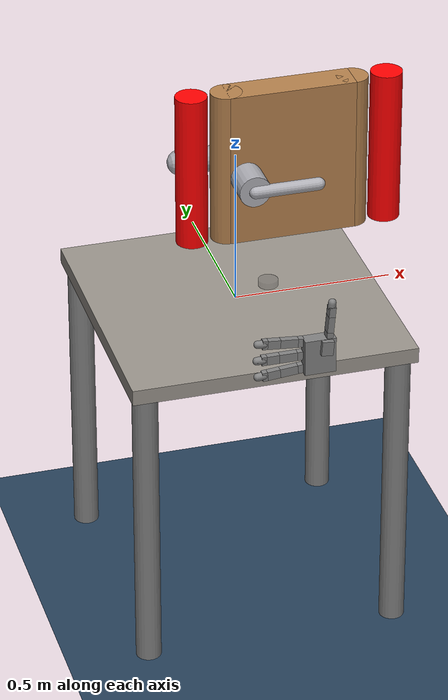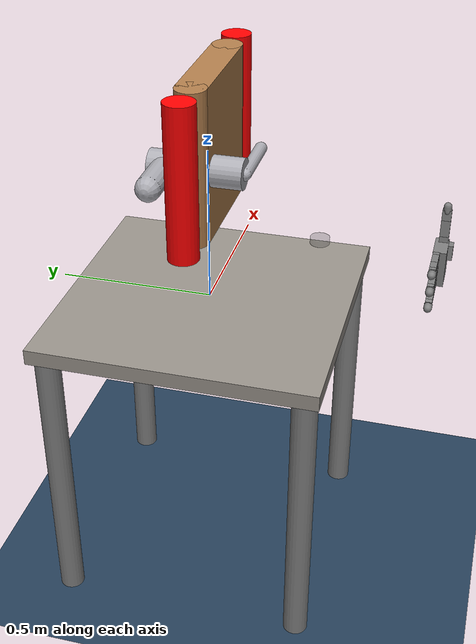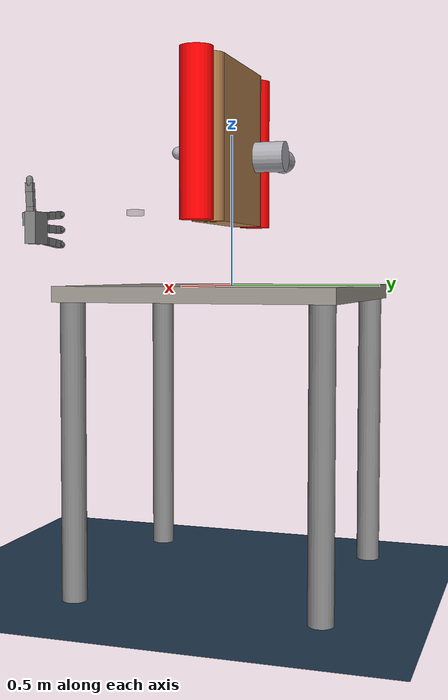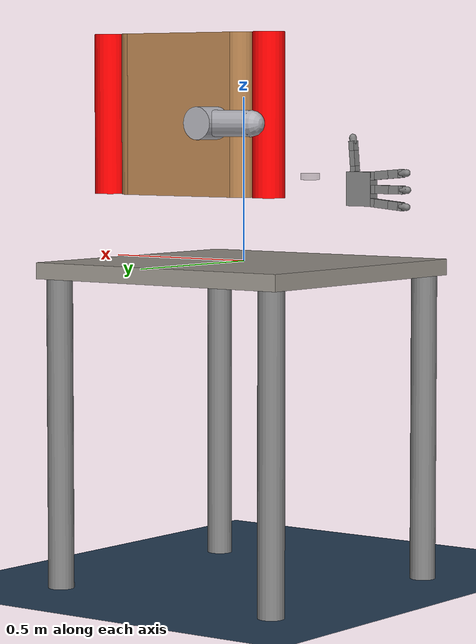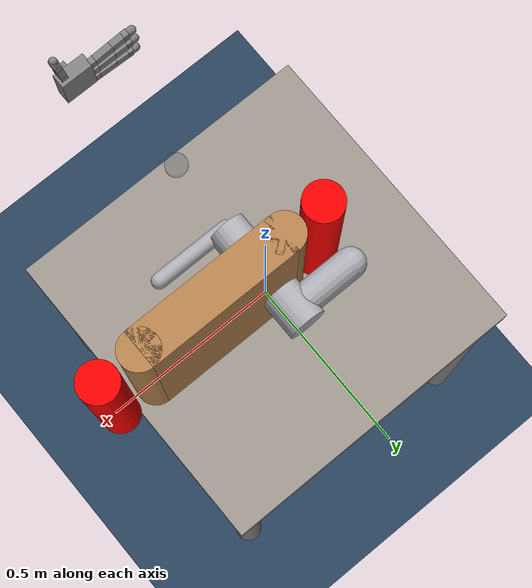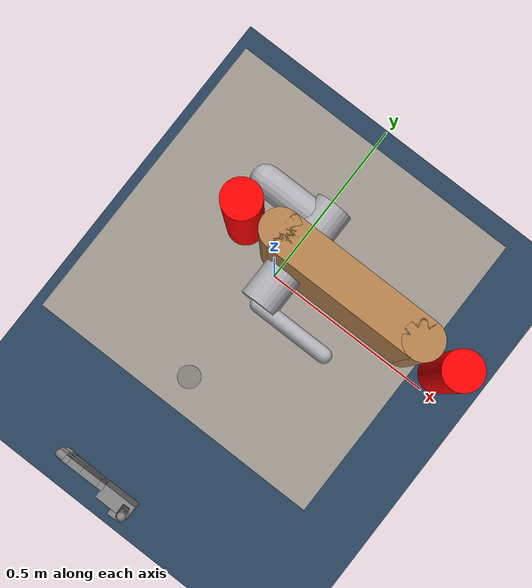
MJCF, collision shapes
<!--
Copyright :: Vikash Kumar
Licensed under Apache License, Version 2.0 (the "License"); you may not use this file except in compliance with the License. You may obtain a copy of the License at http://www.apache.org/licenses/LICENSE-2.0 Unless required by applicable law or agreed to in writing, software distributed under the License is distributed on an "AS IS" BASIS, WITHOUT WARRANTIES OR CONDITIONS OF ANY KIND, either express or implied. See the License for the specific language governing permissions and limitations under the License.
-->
<!-- TODO: change the name  -->

<mujoco model='Allegro-door(v1.0)'>

    <!-- ======= WORLD ======= -->
    <worldbody>
        <light directional='false' diffuse='.7 .7 .7' specular='0.03 0.03 0.03' pos='-1 -1.0 4.0' dir='1 1.0 -4'/>
        <geom name='ground' size="1.5 1.5 0.25" pos="0 0 -1" type="plane" contype="1" conaffinity="0" material="groundplane" />
        <camera name="fixed" pos="0 -0.7 0.7" quat="0.92388 0.382683 0 0" />
        <!-- Camera for the VIL paper -->
        <camera name="vil_camera" pos="0 -1.2 1.2" quat="0.92388 0.382683 0 0" />

        <!-- ======= TABLE ======= -->
        <body name="table">
            <!-- Plane has better contacts -->
            <geom size="0.45 0.45 0.025" pos="0 0 -0.025" type="box" material="tablecube" />
            <geom size="0.04 0.5" pos="0.4 0.4 -0.501" quat="0 1 0 0" type="cylinder" contype="0" conaffinity="0" />
            <geom size="0.04 0.5" pos="-0.4 0.4 -0.501" quat="0 1 0 0" type="cylinder" contype="0" conaffinity="0" />
            <geom size="0.04 0.5" pos="0.4 -0.4 -0.501" quat="0 1 0 0" type="cylinder" contype="0" conaffinity="0" />
            <geom size="0.04 0.5" pos="-0.4 -0.4 -0.501" quat="0 1 0 0" type="cylinder" contype="0" conaffinity="0" />
        </body>

        <!-- ======= MOCAP ======= -->
        <body name="vive_tracker" pos="0 -0.35 0.25" mocap="true">
            <inertial pos="0 0 0" mass="0.064" diaginertia="1.70667e-05 1.70667e-05 1.70667e-05" />
            <geom size="0.03 0.01" type="cylinder" contype="0" conaffinity="0" group="3" rgba="0.3 0.3 0.3 0.3" />
        </body>

        <!-- ======= HAND ======= -->
        <body name="forearm" pos="0 -0.7 0.2" euler="-1.57 0 3.14">
            <inertial pos="0.001 -0.002 0.29" quat="0.982037 -0.0160006 0 -0.188007" mass="4" diaginertia="0.01 0.01 0.0075" />
            <joint name="ARTz" pos="0 0 0" axis="0 0 1" type="slide" range="-0.3 0.5" damping="20" />
            <joint name="ARRx" pos="0 0 0" axis="1 0 0" range="-0.75 0.75" damping="20" />
            <joint name="ARRy" pos="0 0 0" axis="0 1 0" range="-0.75 0.75" damping="20" />
            <joint name="ARRz" pos="0 0 0" axis="0 0 1" range="-1 2" damping="20" />

            <!-- ======= Adroit ======= -->
            <include file="wonik_allegro/left_hand.xml"/>
        </body>

        <!-- ======= DOOR ======= -->
        <body name="frame" pos="-0.107339 0.0435293 0.447376" user="1001 0 2002 -0.4 -0.1 0.252 0 0.3 0.45">
            <inertial pos="0.29 0 0" quat="0.5 0.5 0.5 0.5" mass="7.85398" diaginertia="0.923301 0.764585 0.168533" />
            <geom size="0.05 0.25" pos="0.6 0 0" type="cylinder" material="MatWood" rgba="1 0 0 1" />
            <geom size="0.05 0.25" pos="-0.02 0 0" type="cylinder" material="MatWood" rgba="1 0 0 1" />
            <site name="S_handle_target" pos="0.75 -0.5 -.18" size="0.025" group='3'/>
            <body name="door" pos="0.29 0 0">
                <inertial pos="0.0296816 -0.00152345 0" quat="0.701072 0 0 0.713091" mass="2.43455" diaginertia="0.0913751 0.0521615 0.043714" />
                <joint name="door_hinge" pos="0.31 0 0" axis="0 0 1" range="0 1.57" damping="1" frictionloss="2" />
                <geom size="0.2 0.05 0.25" type="box" friction="1 1 1" material="MatWood" />
                <geom size="0.05 0.25" pos="0.2 0 0" type="cylinder" material="MatWood" />
                <geom size="0.05 0.25" pos="-0.2 0 0" type="cylinder" material="MatWood" />
                <body name="latch" pos="-0.15 0 -0.025">
                    <inertial pos="-0.017762 0.0138544 0" quat="0.365653 0.605347 -0.36522 0.605365" mass="3.53743" diaginertia="0.0483771 0.0410001 0.0111013" />
                    <joint name="latch" pos="0 0 0" axis="0 1 0" range="0 1.8" frictionloss="5" />
                    <geom size="0.05 0.15" quat="0.707388 0.706825 0 0" type="cylinder" material="MatFoil" />
                    <geom size="0.02 0.1" pos="0.1 -0.15 0" quat="0.707388 0 0.706825 0" type="capsule" material="MatFoil" />
                    <geom size="0.04 0.07" pos="-0.1 0.1 0" quat="0.707388 0 0.706825 0" type="capsule" material="MatFoil" />
                    <site name="S_handle" pos="0.15 -0.15 0" size="0.025" group='3'/>
                </body>
            </body>
        </body>

    </worldbody>

    <actuator>
        <general name="A_ARTz" joint="ARTz" ctrlrange="-0.3 0.5" biastype="affine" gainprm="500 0 0" biasprm="0 -200 0" />
        <general name="A_ARRx" joint="ARRx" ctrlrange="-.75 .75" biastype="affine" gainprm="500 0 0" biasprm="0 -200 0" />
        <general name="A_ARRy" joint="ARRy" ctrlrange="-.75 .75" biastype="affine" gainprm="500 0 0" biasprm="0 -200 0" />
        <general name="A_ARRz" joint="ARRz" ctrlrange="-1.0 2.0" biastype="affine" gainprm="500 0 0" biasprm="0 -200 0" />
    </actuator>
    <include file='Allegro_assets.xml'/>
    <!-- #TODO: check here  -->

</mujoco>

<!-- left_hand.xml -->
<mujocoinclude>

  <body name="palm" quat="0 1 0 1" childclass="allegro_left">
    <geom quat="1 -1 0 0" class="palm_visual" mesh="base_link_left"/>
    <geom class="palm_collision"/>
    <site name="S_grasp" type="sphere" rgba="0 0 0 0" size="0.01" pos=".007 -.05 0.07" quat="0.0087 -0.6 -0.0034 -0.81" />
    <!-- TODO: check S_grasp i.e. palm position -->
    <!-- Ring finger -->
    <body name="rf_base" pos="0 0.0435 -0.001542" quat="0.999048 -0.0436194 0 0">
      <joint name="rfj0" class="base"/>
      <geom class="base_visual"/>
      <geom class="base_collision"/>
      <body name="rf_proximal" pos="0 0 0.0164">
        <joint name="rfj1" class="proximal"/>
        <geom class="proximal_visual"/>
        <geom class="proximal_collision"/>
        <body name="rf_medial" pos="0 0 0.054">
          <joint name="rfj2" class="medial"/>
          <geom class="medial_visual"/>
          <geom class="medial_collision"/>
          <body name="rf_distal" pos="0 0 0.0384">
            <joint name="rfj3" class="distal"/>
            <geom class="distal_visual"/>
            <geom class="distal_collision"/>
            <body name="rf_tip">
              <geom class="fingertip_visual"/>
              <geom class="fingertip_collision"/>
            </body>
          </body>
        </body>
      </body>
    </body>
    <!-- Middle finger -->
    <body name="mf_base" pos="0 0 0.0007">
      <joint name="mfj0" class="base"/>
      <geom class="base_visual"/>
      <geom class="base_collision"/>
      <body name="mf_proximal" pos="0 0 0.0164">
        <joint name="mfj1" class="proximal"/>
        <geom class="proximal_visual"/>
        <geom class="proximal_collision"/>
        <body name="mf_medial" pos="0 0 0.054">
          <joint name="mfj2" class="medial"/>
          <geom class="medial_visual"/>
          <geom class="medial_collision"/>
          <body name="mf_distal" pos="0 0 0.0384">
            <joint name="mfj3" class="distal"/>
            <geom class="distal_visual"/>
            <geom class="distal_collision"/>
            <body name="mf_tip">
              <geom class="fingertip_visual"/>
              <geom class="fingertip_collision"/>
            </body>
          </body>
        </body>
      </body>
    </body>
    <!-- First finger -->
    <body name="ff_base" pos="0 -0.0435 -0.001542" quat="0.999048 0.0436194 0 0">
      <joint name="ffj0" class="base"/>
      <geom class="base_visual"/>
      <geom class="base_collision"/>
      <body name="ff_proximal" pos="0 0 0.0164">
        <joint name="ffj1" class="proximal"/>
        <geom class="proximal_visual"/>
        <geom class="proximal_collision"/>
        <body name="ff_medial" pos="0 0 0.054">
          <joint name="ffj2" class="medial"/>
          <geom class="medial_visual"/>
          <geom class="medial_collision"/>
          <body name="ff_distal" pos="0 0 0.0384">
            <joint name="ffj3" class="distal"/>
            <geom class="distal_visual"/>
            <geom class="distal_collision"/>
            <body name="ff_tip">
              <geom class="fingertip_visual"/>
              <geom class="fingertip_collision"/>
            </body>
          </body>
        </body>
      </body>
    </body>
    <!-- Thumb -->
    <body name="th_base" pos="-0.0182 -0.019333 -0.045987" quat="0.477714 0.521334 -0.521334 0.477714">
      <joint name="thj0" class="thumb_base"/>
      <geom quat="0 1 0 0" class="visual" mesh="link_12.0_left"/>
      <geom class="thumb_base_collision"/>
      <body name="th_proximal" pos="-0.027 -0.005 0.0399">
        <joint name="thj1" class="thumb_proximal"/>
        <geom class="visual" mesh="link_13.0"/>
        <geom class="thumb_proximal_collision"/>
        <body name="th_medial" pos="0 0 0.0177">
          <joint name="thj2" class="thumb_medial"/>
          <geom class="visual" mesh="link_14.0"/>
          <geom class="thumb_medial_collision"/>
          <body name="th_distal" pos="0 0 0.0514">
            <joint name="thj3" class="thumb_distal"/>
            <geom class="visual" mesh="link_15.0"/>
            <geom class="thumb_distal_collision"/>
            <body name="th_tip">
              <geom class="thumbtip_visual"/>
              <geom class="thumbtip_collision"/>
            </body>
          </body>
        </body>
      </body>
    </body>
  </body>

</mujocoinclude>

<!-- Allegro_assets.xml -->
<mujocoinclude>

  <compiler angle="radian" meshdir="wonik_allegro/assets" texturedir='../../../dependencies/Adroit/resources/textures/'/>

  <option cone="elliptic" impratio="10"/>

  <default>
    <default class="allegro_left">
      <joint axis="0 1 0" damping=".1"/>
      <position kp="1"/>
      <geom density="800"/>

      <default class="visual">
        <geom type="mesh" contype="0" conaffinity="0" group="2" material="black"/>
        <default class="palm_visual">
          <geom mesh="base_link"/>
        </default>
        <default class="base_visual">
          <geom mesh="link_0.0"/>
        </default>
        <default class="proximal_visual">
          <geom mesh="link_1.0"/>
        </default>
        <default class="medial_visual">
          <geom mesh="link_2.0"/>
        </default>
        <default class="distal_visual">
          <geom mesh="link_3.0"/>
        </default>
        <default class="fingertip_visual">
          <geom pos="0 0 0.0267" material="white" mesh="link_3.0_tip"/>
        </default>
        <default class="thumbtip_visual">
          <geom pos="0 0 0.0423" material="white" mesh="link_15.0_tip"/>
        </default>
      </default>

      <default class="collision">
        <geom group="3" type="box" mass="0"/>
        <default class="palm_collision">
          <geom size="0.0204 0.0565 0.0475" pos="-0.0093 0 -0.0475"/>
        </default>
        <default class="base_collision">
          <geom size="0.0098 0.01375 0.0082" pos="0 0 0.0082"/>
          <default class="thumb_base_collision">
            <geom size="0.0179 0.017 0.02275" pos="-0.0179 0.009 0.0145"/>
          </default>
        </default>
        <default class="proximal_collision">
          <geom size="0.0098 0.01375 0.027" pos="0 0 0.027"/>
          <default class="thumb_proximal_collision">
            <geom size="0.0098 0.01375 0.00885" pos="0 0 0.00885"/>
          </default>
        </default>
        <default class="medial_collision">
          <geom size="0.0098 0.01375 0.0192" pos="0 0 0.0192"/>
          <default class="thumb_medial_collision">
            <geom size="0.0098 0.01375 0.0257" pos="0 0 0.0257"/>
          </default>
        </default>
        <default class="distal_collision">
          <geom size="0.0098 0.01375 0.008" pos="0 0 0.008"/>
          <default class="thumb_distal_collision">
            <geom size="0.0098 0.01375 0.0157" pos="0 0 0.0157"/>
          </default>
        </default>
        <default class="fingertip_collision">
          <geom type="capsule" size="0.012 0.01" pos="0 0 0.019"/>
          <default class="thumbtip_collision">
            <geom type="capsule" size="0.012 0.008" pos="0 0 0.035"/>
          </default>
        </default>
      </default>

      <default class="base">
        <joint axis="0 0 1" range="-0.47 0.47"/>
        <position ctrlrange="-0.47 0.47"/>
      </default>
      <default class="proximal">
        <joint range="-0.196 1.61"/>
        <position ctrlrange="-0.196 1.61"/>
      </default>
      <default class="medial">
        <joint range="-0.174 1.709"/>
        <position ctrlrange="-0.174 1.709"/>
      </default>
      <default class="distal">
        <joint range="-0.227 1.618"/>
        <position ctrlrange="-0.227 1.618"/>
      </default>
      <default class="thumb_base">
        <joint axis="1 0 0" range="0.263 1.396"/>
        <position ctrlrange="0.263 1.396"/>
      </default>
      <default class="thumb_proximal">
        <joint axis="0 0 -1" range="-0.105 1.163"/>
        <position ctrlrange="-0.105 1.163"/>
      </default>
      <default class="thumb_medial">
        <joint range="-0.189 1.644"/>
        <position ctrlrange="-0.189 1.644"/>
      </default>
      <default class="thumb_distal">
        <joint range="-0.162 1.719"/>
        <position ctrlrange="-0.162 1.719"/>
      </default>
    </default>
  </default>

  <asset>
    <material name="black" rgba="0.2 0.2 0.2 1"/>
    <material name="white" rgba="0.9 0.9 0.9 1"/>
    <material name="red" rgba="0.9 0.1 0.1 1"/>

    <mesh file="base_link_left.stl"/>
    <mesh file="link_0.0.stl"/>
    <mesh file="link_1.0.stl"/>
    <mesh file="link_2.0.stl"/>
    <mesh file="link_3.0.stl"/>
    <mesh file="link_3.0_tip.stl"/>
    <mesh file="link_12.0_left.stl"/>
    <mesh file="link_13.0.stl"/>
    <mesh file="link_14.0.stl"/>
    <mesh file="link_15.0.stl"/>
    <mesh file="link_15.0_tip.stl"/>

    <texture type="cube" name="texgeom" builtin="flat" mark="cross" rgb1="0.3 0.6 0.5" rgb2="0.3 0.6 0.5" width="127" height="762" />
    <texture type="cube" name="wood" file="wood.png" />
    <texture type="2d" name="wood2d" file="wood.png" />
    <texture type="cube" name="square" file="square.png" />
    <texture type="cube" name="foil" file="silverRaw.png" />
    <texture type="cube" name="woodb" file="woodb.png" />
    <texture type="2d" name="groundplane" builtin="checker" rgb1="0.2 0.3 0.4" rgb2="0.1 0.2 0.3" width="100" height="100" />
    <texture type="2d" name="marble2d" file="marble.png" />
    <texture type="cube" name="marblecube" file="marble.png" />
    <material name="MatColl" specular="1" shininess="0.3" reflectance="0.5" rgba="0.4 0.5 0.6 1" />
    <material name="MatViz" specular="0.75" shininess="0.1" reflectance="0.5" rgba="0.9 0.7 0.5 1" />
    <material name="MatGnd" specular="0.3" shininess="0.3" reflectance="0.3" rgba="0.5 0.55 0.5 1" />
    <material name="object" texture="texgeom" />
    <material name="groundplane" texture="groundplane" texrepeat="10 10" />
    <material name="table2d" texture="marble2d" reflectance="0.3" rgba="0.8 0.8 0.8 1" />
    <material name="tablecube" texture="marblecube" rgba="0.8 0.8 0.8 1" />
    <material name="MatFoil" texture="foil" specular="1" shininess="0.3" rgba="0.9 0.9 0.9 1" />
    <material name="MatPlane" specular="0.3" shininess="0.3" rgba="0.3 0.3 0.2 1" />
    <material name="MatWood" texture="wood" texrepeat="3 3" specular="0.4" shininess="0.1" />
    <material name="MatSquare" texture="square" specular="1" shininess="0.6" rgba="0.8 0.8 0.8 1" />
    <material name="MatWoodR" texture="wood" specular="1" shininess="0.3" rgba="1 0.5 0.5 1" />
    <material name="MatWoodG" texture="wood" specular="1" shininess="0.3" rgba="0.2 1 0.2 1" />
    <material name="MatWoodB" texture="woodb" specular="1" shininess="0.3" />
    <mesh name="forearm_simple" file="forearm_simple.stl" scale="1 1 1"/>
    <mesh name="wrist" file="wrist.stl" />
    <mesh name="palm" file="palm.stl" />
    <mesh name="lfmetacarpal" file="lfmetacarpal.stl" />
    <mesh name="knuckle" file="knuckle.stl" />
    <mesh name="F3" file="F3.stl" />
    <mesh name="F2" file="F2.stl" />
    <mesh name="F1" file="F1.stl" />
    <mesh name="TH3_z" file="TH3_z.stl" />
    <mesh name="TH2_z" file="TH2_z.stl" />
    <mesh name="TH1_z" file="TH1_z.stl" />
  </asset>

  <contact>
    <exclude body1="palm" body2="ff_base"/>
    <exclude body1="palm" body2="mf_base"/>
    <exclude body1="palm" body2="rf_base"/>
    <exclude body1="palm" body2="th_base"/>
    <exclude body1="palm" body2="th_proximal"/>
  </contact>

  <actuator>
    <position name="ffa0" joint="ffj0" class="base"/>
    <position name="ffa1" joint="ffj1" class="proximal"/>
    <position name="ffa2" joint="ffj2" class="medial"/>
    <position name="ffa3" joint="ffj3" class="distal"/>
    <position name="mfa0" joint="mfj0" class="base"/>
    <position name="mfa1" joint="mfj1" class="proximal"/>
    <position name="mfa2" joint="mfj2" class="medial"/>
    <position name="mfa3" joint="mfj3" class="distal"/>
    <position name="rfa0" joint="rfj0" class="base"/>
    <position name="rfa1" joint="rfj1" class="proximal"/>
    <position name="rfa2" joint="rfj2" class="medial"/>
    <position name="rfa3" joint="rfj3" class="distal"/>
    <position name="tha0" joint="thj0" class="thumb_base"/>
    <position name="tha1" joint="thj1" class="thumb_proximal"/>
    <position name="tha2" joint="thj2" class="thumb_medial"/>
    <position name="tha3" joint="thj3" class="thumb_distal"/>
  </actuator>
</mujocoinclude>
